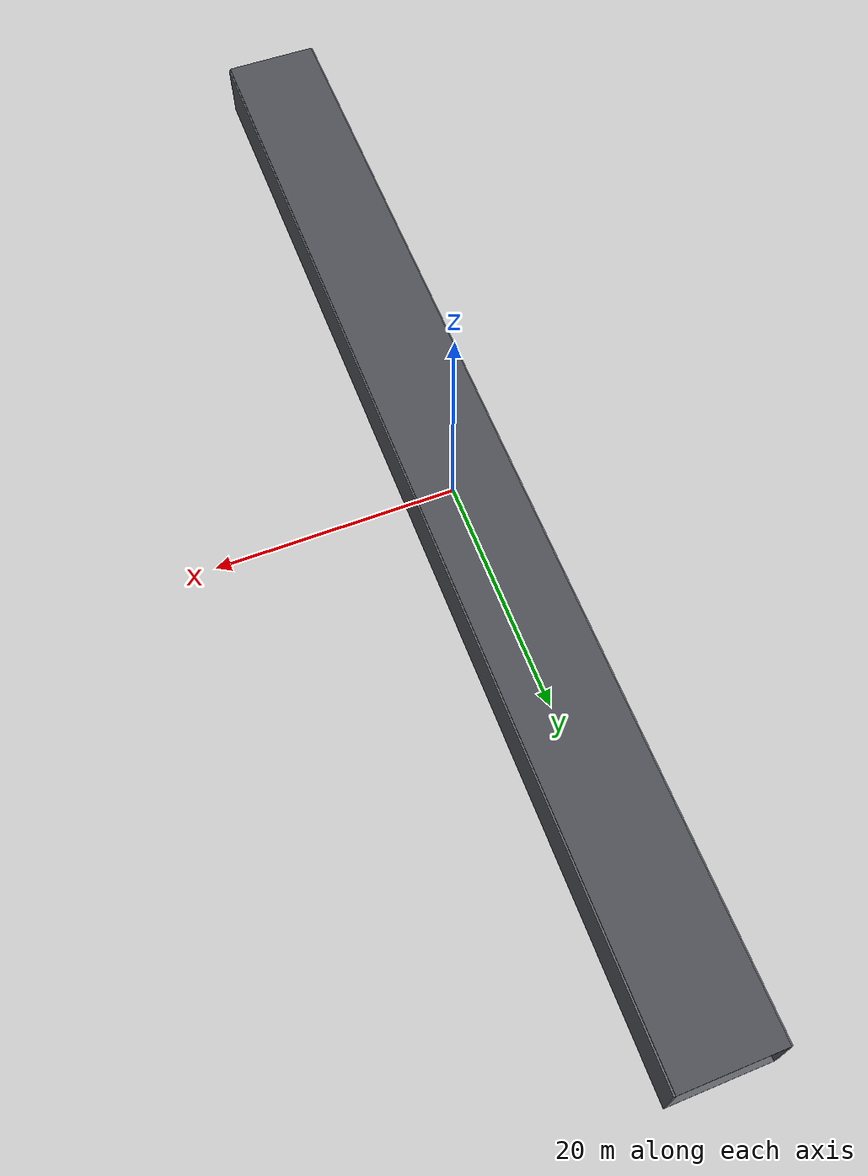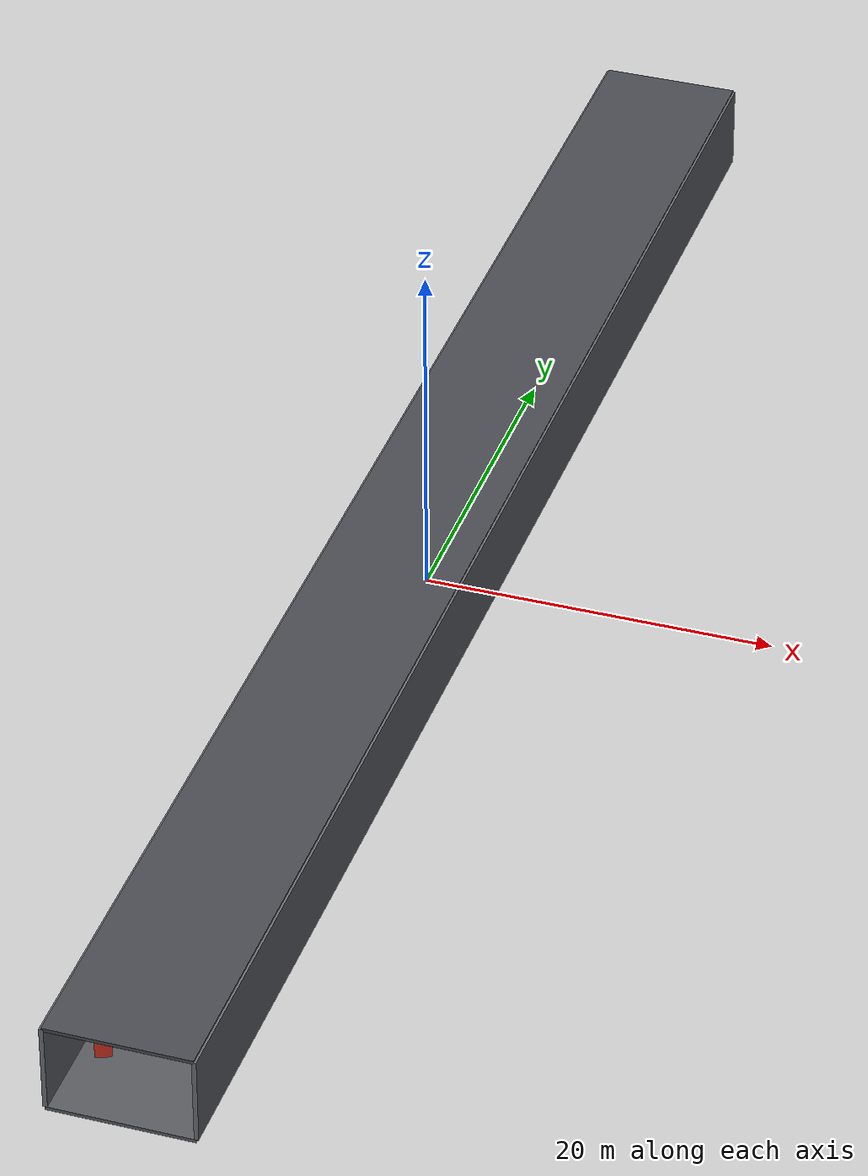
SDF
<sdf version="1.10">
 <world name="large_indoor_tunnel">
  <physics name="apm_1ms_physics" type="ignored">
   <max_step_size>0.001</max_step_size>
   <real_time_factor>1.0</real_time_factor>
  </physics>
  <plugin filename="gz-sim-physics-system" name="gz::sim::systems::Physics"/>
  <plugin filename="gz-sim-air-pressure-system" name="gz::sim::systems::AirPressure"/>
  <plugin filename="gz-sim-sensors-system" name="gz::sim::systems::Sensors">
   <render_engine>ogre2</render_engine>
  </plugin>
  <plugin filename="gz-sim-user-commands-system" name="gz::sim::systems::UserCommands"/>
  <plugin filename="gz-sim-scene-broadcaster-system" name="gz::sim::systems::SceneBroadcaster"/>
  <plugin filename="gz-sim-imu-system" name="gz::sim::systems::Imu"/>
  <plugin filename="gz-sim-navsat-system" name="gz::sim::systems::NavSat"/>
  <scene>
   <ambient>0.28 0.29 0.31 1</ambient>
   <background>0.08 0.09 0.11 1</background>
   <grid>false</grid>
   <shadows>true</shadows>
  </scene>
  <spherical_coordinates>
   <latitude_deg>-35.363262</latitude_deg>
   <longitude_deg>149.165237</longitude_deg>
   <elevation>584</elevation>
   <heading_deg>0</heading_deg>
   <surface_model>EARTH_WGS84</surface_model>
  </spherical_coordinates>
  <light name="tunnel_light" type="directional">
   <pose>0 0 8 0 0 0</pose>
   <direction>-0.3 0.15 -0.94</direction>
   <diffuse>0.72 0.74 0.78 1</diffuse>
   <specular>0.12 0.12 0.12 1</specular>
  </light>
  <model name="long_repetitive_tunnel">
   <static>true</static>
   <link name="tunnel_shell">
    <collision name="floor">
     <pose>0 0 -0.10 0 0 0</pose>
     <geometry><box><size>8 96 0.20</size></box></geometry>
    </collision>
    <visual name="floor_visual">
     <pose>0 0 -0.10 0 0 0</pose>
     <geometry><box><size>8 96 0.20</size></box></geometry>
     <material>
      <diffuse>0.34 0.35 0.37 1</diffuse>
      <pbr>
       <metal>
        <albedo_map>model://uav_test_assets/materials/textures/checker_floor.png</albedo_map>
        <roughness>0.95</roughness>
       </metal>
      </pbr>
     </material>
    </visual>
    <collision name="west_wall">
     <pose>-4 0 2.5 0 0 0</pose>
     <geometry><box><size>0.25 96 5</size></box></geometry>
    </collision>
    <visual name="west_wall_visual">
     <pose>-4 0 2.5 0 0 0</pose>
     <geometry><box><size>0.25 96 5</size></box></geometry>
     <material><diffuse>0.42 0.43 0.46 1</diffuse></material>
    </visual>
    <collision name="east_wall">
     <pose>4 0 2.5 0 0 0</pose>
     <geometry><box><size>0.25 96 5</size></box></geometry>
    </collision>
    <visual name="east_wall_visual">
     <pose>4 0 2.5 0 0 0</pose>
     <geometry><box><size>0.25 96 5</size></box></geometry>
     <material><diffuse>0.42 0.43 0.46 1</diffuse></material>
    </visual>
    <collision name="roof">
     <pose>0 0 5.0 0 0 0</pose>
     <geometry><box><size>8 96 0.20</size></box></geometry>
    </collision>
    <visual name="roof_visual">
     <pose>0 0 5.0 0 0 0</pose>
     <geometry><box><size>8 96 0.20</size></box></geometry>
     <material><diffuse>0.28 0.29 0.31 1</diffuse></material>
    </visual>
    <collision name="rib_m40">
     <pose>-3.80 -40 2.5 0 0 0</pose>
     <geometry><box><size>0.18 0.30 5</size></box></geometry>
    </collision>
    <visual name="rib_m40_visual">
     <pose>-3.80 -40 2.5 0 0 0</pose>
     <geometry><box><size>0.18 0.30 5</size></box></geometry>
     <material><diffuse>0.52 0.53 0.55 1</diffuse></material>
    </visual>
    <collision name="rib_m30">
     <pose>-3.80 -30 2.5 0 0 0</pose>
     <geometry><box><size>0.18 0.30 5</size></box></geometry>
    </collision>
    <visual name="rib_m30_visual">
     <pose>-3.80 -30 2.5 0 0 0</pose>
     <geometry><box><size>0.18 0.30 5</size></box></geometry>
     <material><diffuse>0.52 0.53 0.55 1</diffuse></material>
    </visual>
    <collision name="rib_m20">
     <pose>-3.80 -20 2.5 0 0 0</pose>
     <geometry><box><size>0.18 0.30 5</size></box></geometry>
    </collision>
    <visual name="rib_m20_visual">
     <pose>-3.80 -20 2.5 0 0 0</pose>
     <geometry><box><size>0.18 0.30 5</size></box></geometry>
     <material><diffuse>0.52 0.53 0.55 1</diffuse></material>
    </visual>
    <collision name="rib_m10">
     <pose>-3.80 -10 2.5 0 0 0</pose>
     <geometry><box><size>0.18 0.30 5</size></box></geometry>
    </collision>
    <visual name="rib_m10_visual">
     <pose>-3.80 -10 2.5 0 0 0</pose>
     <geometry><box><size>0.18 0.30 5</size></box></geometry>
     <material><diffuse>0.52 0.53 0.55 1</diffuse></material>
    </visual>
    <collision name="rib_0">
     <pose>-3.80 0 2.5 0 0 0</pose>
     <geometry><box><size>0.18 0.30 5</size></box></geometry>
    </collision>
    <visual name="rib_0_visual">
     <pose>-3.80 0 2.5 0 0 0</pose>
     <geometry><box><size>0.18 0.30 5</size></box></geometry>
     <material><diffuse>0.52 0.53 0.55 1</diffuse></material>
    </visual>
    <collision name="rib_p10">
     <pose>-3.80 10 2.5 0 0 0</pose>
     <geometry><box><size>0.18 0.30 5</size></box></geometry>
    </collision>
    <visual name="rib_p10_visual">
     <pose>-3.80 10 2.5 0 0 0</pose>
     <geometry><box><size>0.18 0.30 5</size></box></geometry>
     <material><diffuse>0.52 0.53 0.55 1</diffuse></material>
    </visual>
    <collision name="rib_p20">
     <pose>-3.80 20 2.5 0 0 0</pose>
     <geometry><box><size>0.18 0.30 5</size></box></geometry>
    </collision>
    <visual name="rib_p20_visual">
     <pose>-3.80 20 2.5 0 0 0</pose>
     <geometry><box><size>0.18 0.30 5</size></box></geometry>
     <material><diffuse>0.52 0.53 0.55 1</diffuse></material>
    </visual>
    <collision name="rib_p30">
     <pose>-3.80 30 2.5 0 0 0</pose>
     <geometry><box><size>0.18 0.30 5</size></box></geometry>
    </collision>
    <visual name="rib_p30_visual">
     <pose>-3.80 30 2.5 0 0 0</pose>
     <geometry><box><size>0.18 0.30 5</size></box></geometry>
     <material><diffuse>0.52 0.53 0.55 1</diffuse></material>
    </visual>
    <collision name="rib_p40">
     <pose>-3.80 40 2.5 0 0 0</pose>
     <geometry><box><size>0.18 0.30 5</size></box></geometry>
    </collision>
    <visual name="rib_p40_visual">
     <pose>-3.80 40 2.5 0 0 0</pose>
     <geometry><box><size>0.18 0.30 5</size></box></geometry>
     <material><diffuse>0.52 0.53 0.55 1</diffuse></material>
    </visual>
    <collision name="south_landmark">
     <pose>-2.8 -43 1.1 0 0 0.35</pose>
     <geometry><box><size>0.9 1.3 2.2</size></box></geometry>
    </collision>
    <visual name="south_landmark_visual">
     <pose>-2.8 -43 1.1 0 0 0.35</pose>
     <geometry><box><size>0.9 1.3 2.2</size></box></geometry>
     <material><diffuse>0.78 0.18 0.12 1</diffuse></material>
    </visual>
    <collision name="north_landmark">
     <pose>2.6 43 1.5 0 0 -0.28</pose>
     <geometry><box><size>1.2 0.8 3.0</size></box></geometry>
    </collision>
    <visual name="north_landmark_visual">
     <pose>2.6 43 1.5 0 0 -0.28</pose>
     <geometry><box><size>1.2 0.8 3.0</size></box></geometry>
     <material><diffuse>0.10 0.35 0.82 1</diffuse></material>
    </visual>
    <visual name="band_m35">
     <pose>0 -35 0.015 0 0 0</pose>
     <geometry><box><size>7.5 0.25 0.02</size></box></geometry>
     <material><diffuse>0.75 0.75 0.72 1</diffuse></material>
    </visual>
    <visual name="band_m25">
     <pose>0 -25 0.015 0 0 0</pose>
     <geometry><box><size>7.5 0.25 0.02</size></box></geometry>
     <material><diffuse>0.75 0.75 0.72 1</diffuse></material>
    </visual>
    <visual name="band_m15">
     <pose>0 -15 0.015 0 0 0</pose>
     <geometry><box><size>7.5 0.25 0.02</size></box></geometry>
     <material><diffuse>0.75 0.75 0.72 1</diffuse></material>
    </visual>
    <visual name="band_m5">
     <pose>0 -5 0.015 0 0 0</pose>
     <geometry><box><size>7.5 0.25 0.02</size></box></geometry>
     <material><diffuse>0.75 0.75 0.72 1</diffuse></material>
    </visual>
    <visual name="band_p5">
     <pose>0 5 0.015 0 0 0</pose>
     <geometry><box><size>7.5 0.25 0.02</size></box></geometry>
     <material><diffuse>0.75 0.75 0.72 1</diffuse></material>
    </visual>
    <visual name="band_p15">
     <pose>0 15 0.015 0 0 0</pose>
     <geometry><box><size>7.5 0.25 0.02</size></box></geometry>
     <material><diffuse>0.75 0.75 0.72 1</diffuse></material>
    </visual>
    <visual name="band_p25">
     <pose>0 25 0.015 0 0 0</pose>
     <geometry><box><size>7.5 0.25 0.02</size></box></geometry>
     <material><diffuse>0.75 0.75 0.72 1</diffuse></material>
    </visual>
    <visual name="band_p35">
     <pose>0 35 0.015 0 0 0</pose>
     <geometry><box><size>7.5 0.25 0.02</size></box></geometry>
     <material><diffuse>0.75 0.75 0.72 1</diffuse></material>
    </visual>
   </link>
  </model>
  <include>
   <uri>model://textured_person</uri>
   <name>tunnel_person_a</name>
   <pose>-1.6 -24 0.05 0 0 0</pose>
  </include>
  <include>
   <uri>model://textured_person</uri>
   <name>tunnel_person_b</name>
   <pose>1.4 4 0.05 0 0 3.14159</pose>
  </include>
  <include>
   <uri>model://textured_person</uri>
   <name>tunnel_person_c</name>
   <pose>-1.2 28 0.05 0 0 0</pose>
  </include>
 </world>
</sdf>

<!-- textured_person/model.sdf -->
<sdf version="1.10">
  <model name="textured_person">
    <static>false</static>
    <self_collide>false</self_collide>
    <link name="visual_link">
      <gravity>false</gravity>
      <kinematic>true</kinematic>
      <!-- A lightweight collision envelope makes the moving model visible to
           Gazebo ray sensors without adding articulated-body simulation. -->
      <collision name="lidar_collision">
        <pose>0 0 0.65 0 0 0</pose>
        <geometry><box><size>0.34 0.30 1.30</size></box></geometry>
      </collision>
      <visual name="head"><pose>0 0 1.204 0 0 0</pose><geometry><sphere><radius>0.112</radius></sphere></geometry><material><diffuse>0.72 0.52 0.38 1</diffuse></material></visual>
      <visual name="hair"><pose>-0.025 0 1.288 0 0 0</pose><geometry><sphere><radius>0.108</radius></sphere></geometry><material><diffuse>0.08 0.055 0.04 1</diffuse></material></visual>
      <visual name="neck"><pose>0 0 1.043 0 0 0</pose><geometry><cylinder><radius>0.046</radius><length>0.13</length></cylinder></geometry><material><diffuse>0.68 0.48 0.34 1</diffuse></material></visual>
      <visual name="chest"><pose>0 0 0.84 0 0 0</pose><geometry><box><size>0.31 0.18 0.40</size></box></geometry><material><diffuse>0.05 0.18 0.34 1</diffuse><pbr><metal><albedo_map>materials/textures/person_albedo.png</albedo_map><roughness>0.8</roughness></metal></pbr></material></visual>
      <visual name="abdomen_fill"><pose>0 0 0.63 0 0 0</pose><geometry><box><size>0.27 0.17 0.25</size></box></geometry><material><diffuse>0.045 0.14 0.26 1</diffuse></material></visual>
      <visual name="pelvis"><pose>0 0 0.49 0 0 0</pose><geometry><box><size>0.25 0.16 0.13</size></box></geometry><material><diffuse>0.05 0.055 0.075 1</diffuse></material></visual>
      <visual name="left_shoulder"><pose>0 0.16 0.91 0 0 0</pose><geometry><sphere><radius>0.055</radius></sphere></geometry><material><diffuse>0.04 0.16 0.30 1</diffuse></material></visual>
      <visual name="right_shoulder"><pose>0 -0.16 0.91 0 0 0</pose><geometry><sphere><radius>0.055</radius></sphere></geometry><material><diffuse>0.04 0.16 0.30 1</diffuse></material></visual>
      <visual name="left_arm"><pose>0.02 0.20 0.76 0.22 0.20 0</pose><geometry><cylinder><radius>0.034</radius><length>0.42</length></cylinder></geometry><material><diffuse>0.04 0.16 0.30 1</diffuse></material></visual>
      <visual name="right_arm"><pose>0.02 -0.20 0.76 -0.22 -0.20 0</pose><geometry><cylinder><radius>0.034</radius><length>0.42</length></cylinder></geometry><material><diffuse>0.04 0.16 0.30 1</diffuse></material></visual>
      <visual name="left_hand"><pose>0.045 0.25 0.55 0 0 0</pose><geometry><sphere><radius>0.040</radius></sphere></geometry><material><diffuse>0.70 0.50 0.36 1</diffuse></material></visual>
      <visual name="right_hand"><pose>0.045 -0.25 0.55 0 0 0</pose><geometry><sphere><radius>0.040</radius></sphere></geometry><material><diffuse>0.70 0.50 0.36 1</diffuse></material></visual>
      <visual name="left_upper_leg"><pose>0 0.065 0.31 0.04 0 0</pose><geometry><cylinder><radius>0.048</radius><length>0.34</length></cylinder></geometry><material><diffuse>0.035 0.04 0.055 1</diffuse></material></visual>
      <visual name="right_upper_leg"><pose>0 -0.065 0.31 -0.04 0 0</pose><geometry><cylinder><radius>0.048</radius><length>0.34</length></cylinder></geometry><material><diffuse>0.035 0.04 0.055 1</diffuse></material></visual>
      <visual name="left_lower_leg"><pose>0.02 0.065 0.13 -0.04 0 0</pose><geometry><cylinder><radius>0.043</radius><length>0.30</length></cylinder></geometry><material><diffuse>0.035 0.04 0.055 1</diffuse></material></visual>
      <visual name="right_lower_leg"><pose>0.02 -0.065 0.13 0.04 0 0</pose><geometry><cylinder><radius>0.043</radius><length>0.30</length></cylinder></geometry><material><diffuse>0.035 0.04 0.055 1</diffuse></material></visual>
      <visual name="left_shoe"><pose>0.065 0.065 0.035 0 0 0</pose><geometry><box><size>0.17 0.08 0.055</size></box></geometry><material><diffuse>0.015 0.015 0.014 1</diffuse></material></visual>
      <visual name="right_shoe"><pose>0.065 -0.065 0.035 0 0 0</pose><geometry><box><size>0.17 0.08 0.055</size></box></geometry><material><diffuse>0.015 0.015 0.014 1</diffuse></material></visual>
    </link>
  </model>
</sdf>
